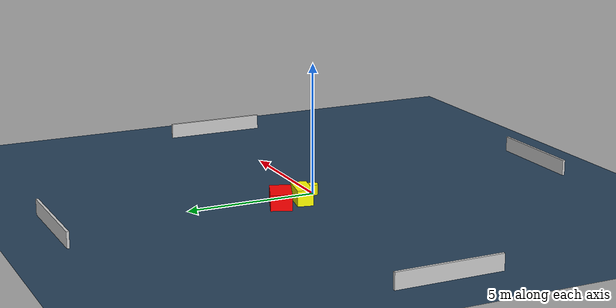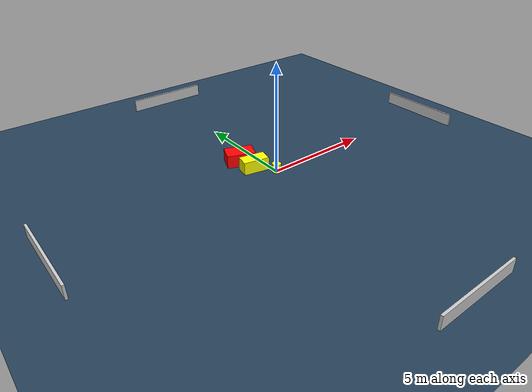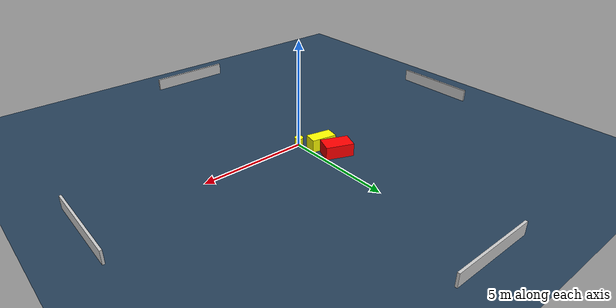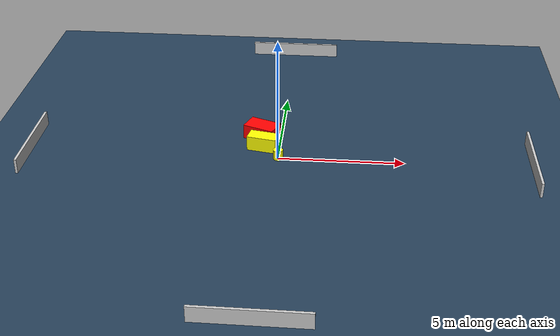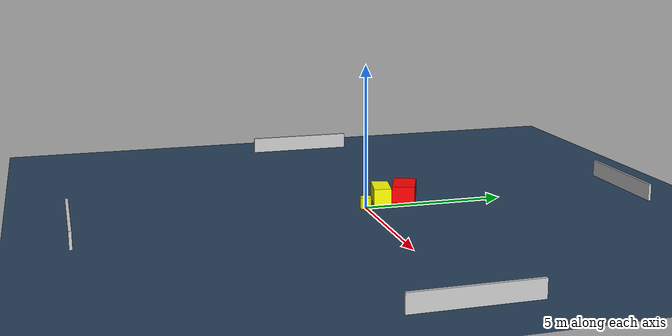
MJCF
<?xml version="1.0" ?>
<mujoco model="generated_environment">
  <option timestep="0.01" integrator="RK4" cone="elliptic"/>
  <default>
    <geom density="1"/>
  </default>
  <asset>
    <texture builtin="gradient" height="3072" name="skybox" rgb1="0.3 0.5 0.7" rgb2="0 0 0" type="skybox" width="512"/>
    <texture builtin="checker" height="300" name="groundplane" rgb1="0.2 0.3 0.4" rgb2="0.1 0.2 0.3" type="2d" width="300"/>
    <material name="groundplane" reflectance="0.2" texrepeat="5 5" texture="groundplane"/>
  </asset>
  <worldbody>
    <light dir="0 0 -1" directional="true" pos="0 0 1.5"/>
    <geom condim="3" friction="0.5 0.005 0.001" material="groundplane" name="floor" pos="0 0 0" size="0 0 0.05" type="plane"/>
    <body name="walls">
      <geom name="wall_1" condim="4" pos="-10.0 0.0 0.3" rgba="0.800000011920929 0.800000011920929 0.800000011920929 1.0" size="0.05 2.0 0.3" type="box"/>
      <geom name="wall_2" condim="4" pos="10.0 0.0 0.3" rgba="0.800000011920929 0.800000011920929 0.800000011920929 1.0" size="0.05 2.0 0.3" type="box"/>
      <geom name="wall_3" condim="4" pos="0.0 -10.0 0.3" rgba="0.800000011920929 0.800000011920929 0.800000011920929 1.0" size="2.0 0.05 0.3" type="box"/>
      <geom name="wall_4" condim="4" pos="0.0 10.0 0.3" rgba="0.800000011920929 0.800000011920929 0.800000011920929 1.0" size="2.0 0.05 0.3" type="box"/>
    </body>
    <body name="robot">
      <joint name="joint_x" type="slide" pos="0 0 0" axis="1 0 0"/>
      <joint name="joint_y" type="slide" pos="0 0 0" axis="0 1 0"/>
      <geom name="robot" type="cylinder" pos="0.0 0.0 0.2" size="0.2 0.2 0.0" mass="5.0" friction="1.0 0.005 0.0001" condim="4" rgba="1.0 1.0 0.0 1.0"/>
    </body>
    <body name="obstacle_1_movable">
      <geom name="obstacle_1_movable" condim="4" pos="-0.6731536841952633 0.766514824024946 0.3" euler="0 0 78.67403427911705" friction="0.0 0.005 0.001" rgba="1.0 1.0 0.0 1.0" size="0.30492885802109154 0.5918891165912228 0.3" type="box" mass="0.1"/>
      <joint type="free"/>
    </body>
    <body name="obstacle_2_static">
      <geom name="obstacle_2_static" condim="4" pos="-0.80024028137324 1.680173966668186 0.3" euler="0 0 338.2464903680872" friction="0.0 0.005 0.001" rgba="1.0 0.0 0.0 1.0" size="0.6512654541305645 0.40267547711509066 0.3" type="box"/>
    </body>
  </worldbody>
  <actuator>
    <motor name="actuator_x" joint="joint_x" gear="1" ctrlrange="-1 1"/>
    <motor name="actuator_y" joint="joint_y" gear="1" ctrlrange="-1 1"/>
  </actuator>
</mujoco>
